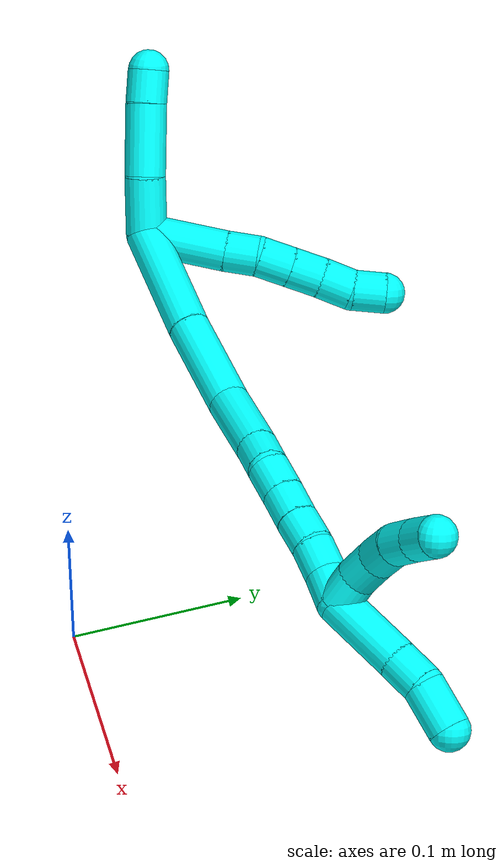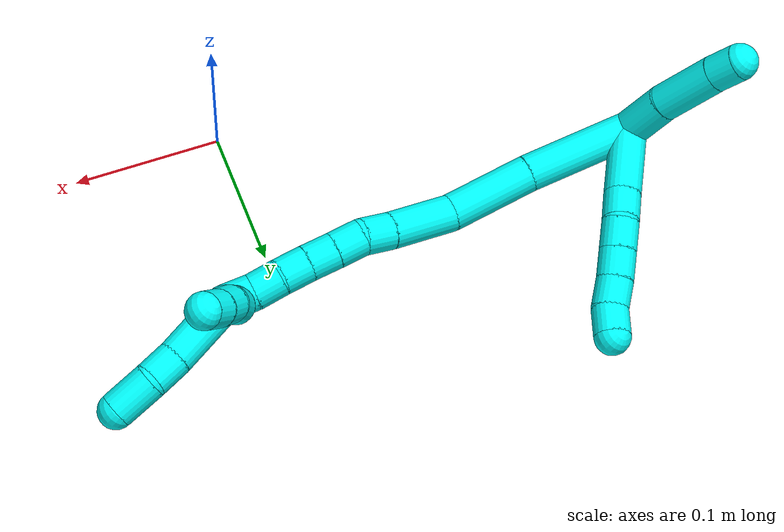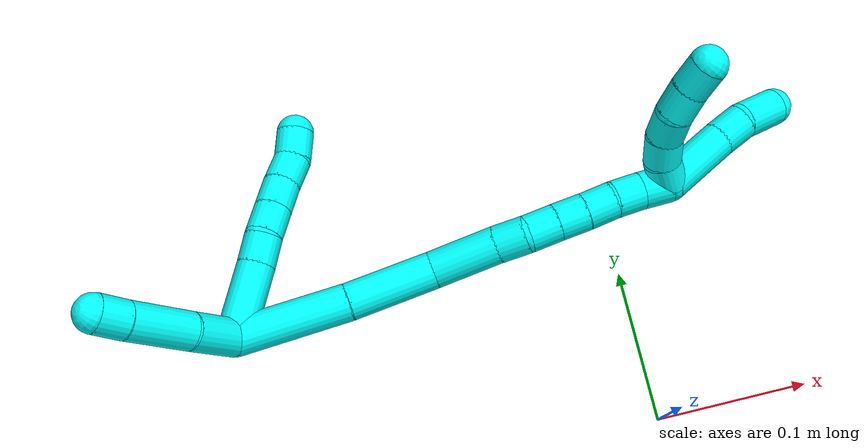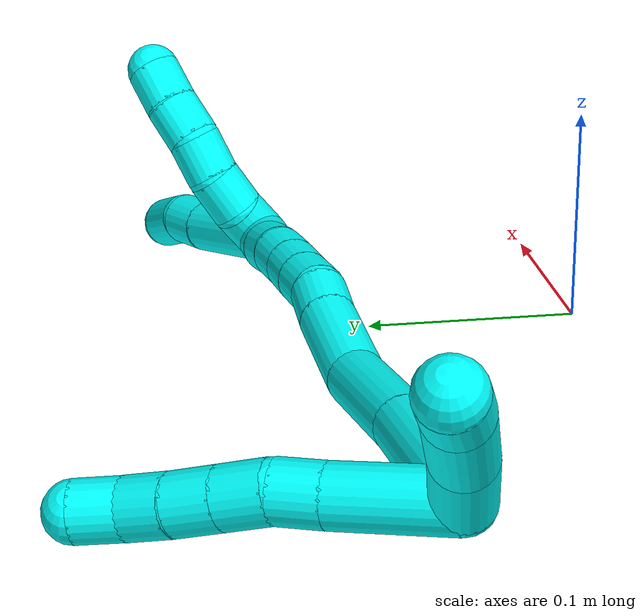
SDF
<sdf version="1.7">
 <world name="default">
  <model name="3">
   <static>0</static>
   <link name="3">
    <collision name="collision-cylinder-e_1_2_8">
     <pose>0.021741 0.010848 -0.003747 -1.90339 1.08507 -1.40443</pose>
     <geometry><cylinder><radius>0.0125</radius><length>0.049169</length></cylinder></geometry>
     <surface>
      <friction><ode><mu>1.16</mu><mu2>1.16</mu2><slip1>0</slip1><slip2>0</slip2></ode></friction>
      <contact><ode><kp>1e+06</kp><kd>1</kd><max_vel>0</max_vel><min_depth>0.001</min_depth></ode></contact>
     </surface>
    </collision>
    <visual name="visual-cylinder-e_1_2_8">
     <pose>0.021741 0.010848 -0.003747 -1.90339 1.08507 -1.40443</pose>
     <geometry><cylinder><radius>0.0125</radius><length>0.049169</length></cylinder></geometry>
     <material><ambient>0.003922 1 0.996078 1</ambient></material>
    </visual>
    <collision name="collision-cylinder-e_2_8_9">
     <pose>0.052488 0.02602 -0.008484 -1.79571 1.11324 -1.32571</pose>
     <geometry><cylinder><radius>0.0125</radius><length>0.020077</length></cylinder></geometry>
     <surface>
      <friction><ode><mu>1.16</mu><mu2>1.16</mu2><slip1>0</slip1><slip2>0</slip2></ode></friction>
      <contact><ode><kp>1e+06</kp><kd>1</kd><max_vel>0</max_vel><min_depth>0.001</min_depth></ode></contact>
     </surface>
    </collision>
    <visual name="visual-cylinder-e_2_8_9">
     <pose>0.052488 0.02602 -0.008484 -1.79571 1.11324 -1.32571</pose>
     <geometry><cylinder><radius>0.0125</radius><length>0.020077</length></cylinder></geometry>
     <material><ambient>0.003922 1 0.996078 1</ambient></material>
    </visual>
    <collision name="collision-cylinder-e_3_9_10">
     <pose>0.069725 0.035669 -0.012523 -2.09093 0.930083 -1.42693</pose>
     <geometry><cylinder><radius>0.0125</radius><length>0.020535</length></cylinder></geometry>
     <surface>
      <friction><ode><mu>1.16</mu><mu2>1.16</mu2><slip1>0</slip1><slip2>0</slip2></ode></friction>
      <contact><ode><kp>1e+06</kp><kd>1</kd><max_vel>0</max_vel><min_depth>0.001</min_depth></ode></contact>
     </surface>
    </collision>
    <visual name="visual-cylinder-e_3_9_10">
     <pose>0.069725 0.035669 -0.012523 -2.09093 0.930083 -1.42693</pose>
     <geometry><cylinder><radius>0.0125</radius><length>0.020535</length></cylinder></geometry>
     <material><ambient>0.003922 1 0.996078 1</ambient></material>
    </visual>
    <collision name="collision-cylinder-e_4_10_11">
     <pose>0.086028 0.046192 -0.018573 -2.09426 0.931416 -1.43239</pose>
     <geometry><cylinder><radius>0.0125</radius><length>0.020117</length></cylinder></geometry>
     <surface>
      <friction><ode><mu>1.16</mu><mu2>1.16</mu2><slip1>0</slip1><slip2>0</slip2></ode></friction>
      <contact><ode><kp>1e+06</kp><kd>1</kd><max_vel>0</max_vel><min_depth>0.001</min_depth></ode></contact>
     </surface>
    </collision>
    <visual name="visual-cylinder-e_4_10_11">
     <pose>0.086028 0.046192 -0.018573 -2.09426 0.931416 -1.43239</pose>
     <geometry><cylinder><radius>0.0125</radius><length>0.020117</length></cylinder></geometry>
     <material><ambient>0.003922 1 0.996078 1</ambient></material>
    </visual>
    <collision name="collision-cylinder-e_5_11_12">
     <pose>0.102396 0.05593 -0.024884 -2.20081 0.97558 -1.61332</pose>
     <geometry><cylinder><radius>0.0125</radius><length>0.02004</length></cylinder></geometry>
     <surface>
      <friction><ode><mu>1.16</mu><mu2>1.16</mu2><slip1>0</slip1><slip2>0</slip2></ode></friction>
      <contact><ode><kp>1e+06</kp><kd>1</kd><max_vel>0</max_vel><min_depth>0.001</min_depth></ode></contact>
     </surface>
    </collision>
    <visual name="visual-cylinder-e_5_11_12">
     <pose>0.102396 0.05593 -0.024884 -2.20081 0.97558 -1.61332</pose>
     <geometry><cylinder><radius>0.0125</radius><length>0.02004</length></cylinder></geometry>
     <material><ambient>0.003922 1 0.996078 1</ambient></material>
    </visual>
    <collision name="collision-cylinder-e_6_12_6">
     <pose>0.118879 0.066227 -0.028867 -1.68716 0.954621 -1.05293</pose>
     <geometry><cylinder><radius>0.0125</radius><length>0.020062</length></cylinder></geometry>
     <surface>
      <friction><ode><mu>1.16</mu><mu2>1.16</mu2><slip1>0</slip1><slip2>0</slip2></ode></friction>
      <contact><ode><kp>1e+06</kp><kd>1</kd><max_vel>0</max_vel><min_depth>0.001</min_depth></ode></contact>
     </surface>
    </collision>
    <visual name="visual-cylinder-e_6_12_6">
     <pose>0.118879 0.066227 -0.028867 -1.68716 0.954621 -1.05293</pose>
     <geometry><cylinder><radius>0.0125</radius><length>0.020062</length></cylinder></geometry>
     <material><ambient>0.003922 1 0.996078 1</ambient></material>
    </visual>
    <collision name="collision-cylinder-e_1_2_13">
     <pose>-0.00129 -1.3e-05 0.017809 0.000735 -0.072312 -2.7e-05</pose>
     <geometry><cylinder><radius>0.0125</radius><length>0.035712</length></cylinder></geometry>
     <surface>
      <friction><ode><mu>1.16</mu><mu2>1.16</mu2><slip1>0</slip1><slip2>0</slip2></ode></friction>
      <contact><ode><kp>1e+06</kp><kd>1</kd><max_vel>0</max_vel><min_depth>0.001</min_depth></ode></contact>
     </surface>
    </collision>
    <visual name="visual-cylinder-e_1_2_13">
     <pose>-0.00129 -1.3e-05 0.017809 0.000735 -0.072312 -2.7e-05</pose>
     <geometry><cylinder><radius>0.0125</radius><length>0.035712</length></cylinder></geometry>
     <material><ambient>0.003922 1 0.996078 1</ambient></material>
    </visual>
    <collision name="collision-cylinder-e_2_13_14">
     <pose>-0.004958 0.002916 0.057405 -0.134229 -0.107742 0.007249</pose>
     <geometry><cylinder><radius>0.0125</radius><length>0.044225</length></cylinder></geometry>
     <surface>
      <friction><ode><mu>1.16</mu><mu2>1.16</mu2><slip1>0</slip1><slip2>0</slip2></ode></friction>
      <contact><ode><kp>1e+06</kp><kd>1</kd><max_vel>0</max_vel><min_depth>0.001</min_depth></ode></contact>
     </surface>
    </collision>
    <visual name="visual-cylinder-e_2_13_14">
     <pose>-0.004958 0.002916 0.057405 -0.134229 -0.107742 0.007249</pose>
     <geometry><cylinder><radius>0.0125</radius><length>0.044225</length></cylinder></geometry>
     <material><ambient>0.003922 1 0.996078 1</ambient></material>
    </visual>
    <collision name="collision-cylinder-e_3_14_5">
     <pose>-0.008152 0.007798 0.089 -0.195322 -0.081477 0.007987</pose>
     <geometry><cylinder><radius>0.0125</radius><length>0.020063</length></cylinder></geometry>
     <surface>
      <friction><ode><mu>1.16</mu><mu2>1.16</mu2><slip1>0</slip1><slip2>0</slip2></ode></friction>
      <contact><ode><kp>1e+06</kp><kd>1</kd><max_vel>0</max_vel><min_depth>0.001</min_depth></ode></contact>
     </surface>
    </collision>
    <visual name="visual-cylinder-e_3_14_5">
     <pose>-0.008152 0.007798 0.089 -0.195322 -0.081477 0.007987</pose>
     <geometry><cylinder><radius>0.0125</radius><length>0.020063</length></cylinder></geometry>
     <material><ambient>0.003922 1 0.996078 1</ambient></material>
    </visual>
    <collision name="collision-cylinder-e_1_2_15">
     <pose>0.025876 -0.01528 -0.022347 2.54184 0.762826 1.82802</pose>
     <geometry><cylinder><radius>0.0125</radius><length>0.074899</length></cylinder></geometry>
     <surface>
      <friction><ode><mu>1.16</mu><mu2>1.16</mu2><slip1>0</slip1><slip2>0</slip2></ode></friction>
      <contact><ode><kp>1e+06</kp><kd>1</kd><max_vel>0</max_vel><min_depth>0.001</min_depth></ode></contact>
     </surface>
    </collision>
    <visual name="visual-cylinder-e_1_2_15">
     <pose>0.025876 -0.01528 -0.022347 2.54184 0.762826 1.82802</pose>
     <geometry><cylinder><radius>0.0125</radius><length>0.074899</length></cylinder></geometry>
     <material><ambient>0.003922 1 0.996078 1</ambient></material>
    </visual>
    <collision name="collision-cylinder-e_2_15_16">
     <pose>0.073029 -0.04094 -0.062079 2.60332 0.81018 1.99837</pose>
     <geometry><cylinder><radius>0.0125</radius><length>0.058742</length></cylinder></geometry>
     <surface>
      <friction><ode><mu>1.16</mu><mu2>1.16</mu2><slip1>0</slip1><slip2>0</slip2></ode></friction>
      <contact><ode><kp>1e+06</kp><kd>1</kd><max_vel>0</max_vel><min_depth>0.001</min_depth></ode></contact>
     </surface>
    </collision>
    <visual name="visual-cylinder-e_2_15_16">
     <pose>0.073029 -0.04094 -0.062079 2.60332 0.81018 1.99837</pose>
     <geometry><cylinder><radius>0.0125</radius><length>0.058742</length></cylinder></geometry>
     <material><ambient>0.003922 1 0.996078 1</ambient></material>
    </visual>
    <collision name="collision-cylinder-e_3_16_17">
     <pose>0.111654 -0.06309 -0.087881 2.1917 0.875581 1.47697</pose>
     <geometry><cylinder><radius>0.0125</radius><length>0.04518</length></cylinder></geometry>
     <surface>
      <friction><ode><mu>1.16</mu><mu2>1.16</mu2><slip1>0</slip1><slip2>0</slip2></ode></friction>
      <contact><ode><kp>1e+06</kp><kd>1</kd><max_vel>0</max_vel><min_depth>0.001</min_depth></ode></contact>
     </surface>
    </collision>
    <visual name="visual-cylinder-e_3_16_17">
     <pose>0.111654 -0.06309 -0.087881 2.1917 0.875581 1.47697</pose>
     <geometry><cylinder><radius>0.0125</radius><length>0.04518</length></cylinder></geometry>
     <material><ambient>0.003922 1 0.996078 1</ambient></material>
    </visual>
    <collision name="collision-cylinder-e_4_17_18">
     <pose>0.136579 -0.080788 -0.099888 2.11501 0.830029 1.3269</pose>
     <geometry><cylinder><radius>0.0125</radius><length>0.020538</length></cylinder></geometry>
     <surface>
      <friction><ode><mu>1.16</mu><mu2>1.16</mu2><slip1>0</slip1><slip2>0</slip2></ode></friction>
      <contact><ode><kp>1e+06</kp><kd>1</kd><max_vel>0</max_vel><min_depth>0.001</min_depth></ode></contact>
     </surface>
    </collision>
    <visual name="visual-cylinder-e_4_17_18">
     <pose>0.136579 -0.080788 -0.099888 2.11501 0.830029 1.3269</pose>
     <geometry><cylinder><radius>0.0125</radius><length>0.020538</length></cylinder></geometry>
     <material><ambient>0.003922 1 0.996078 1</ambient></material>
    </visual>
    <collision name="collision-cylinder-e_5_18_19">
     <pose>0.151819 -0.090489 -0.109233 2.5616 0.838919 1.9621</pose>
     <geometry><cylinder><radius>0.0125</radius><length>0.0206</length></cylinder></geometry>
     <surface>
      <friction><ode><mu>1.16</mu><mu2>1.16</mu2><slip1>0</slip1><slip2>0</slip2></ode></friction>
      <contact><ode><kp>1e+06</kp><kd>1</kd><max_vel>0</max_vel><min_depth>0.001</min_depth></ode></contact>
     </surface>
    </collision>
    <visual name="visual-cylinder-e_5_18_19">
     <pose>0.151819 -0.090489 -0.109233 2.5616 0.838919 1.9621</pose>
     <geometry><cylinder><radius>0.0125</radius><length>0.0206</length></cylinder></geometry>
     <material><ambient>0.003922 1 0.996078 1</ambient></material>
    </visual>
    <collision name="collision-cylinder-e_6_19_20">
     <pose>0.1668 -0.098125 -0.12062 2.54001 0.820042 1.9019</pose>
     <geometry><cylinder><radius>0.0125</radius><length>0.020017</length></cylinder></geometry>
     <surface>
      <friction><ode><mu>1.16</mu><mu2>1.16</mu2><slip1>0</slip1><slip2>0</slip2></ode></friction>
      <contact><ode><kp>1e+06</kp><kd>1</kd><max_vel>0</max_vel><min_depth>0.001</min_depth></ode></contact>
     </surface>
    </collision>
    <visual name="visual-cylinder-e_6_19_20">
     <pose>0.1668 -0.098125 -0.12062 2.54001 0.820042 1.9019</pose>
     <geometry><cylinder><radius>0.0125</radius><length>0.020017</length></cylinder></geometry>
     <material><ambient>0.003922 1 0.996078 1</ambient></material>
    </visual>
    <collision name="collision-cylinder-e_7_20_21">
     <pose>0.181697 -0.105568 -0.131723 2.56259 0.858927 1.98826</pose>
     <geometry><cylinder><radius>0.0125</radius><length>0.02002</length></cylinder></geometry>
     <surface>
      <friction><ode><mu>1.16</mu><mu2>1.16</mu2><slip1>0</slip1><slip2>0</slip2></ode></friction>
      <contact><ode><kp>1e+06</kp><kd>1</kd><max_vel>0</max_vel><min_depth>0.001</min_depth></ode></contact>
     </surface>
    </collision>
    <visual name="visual-cylinder-e_7_20_21">
     <pose>0.181697 -0.105568 -0.131723 2.56259 0.858927 1.98826</pose>
     <geometry><cylinder><radius>0.0125</radius><length>0.02002</length></cylinder></geometry>
     <material><ambient>0.003922 1 0.996078 1</ambient></material>
    </visual>
    <collision name="collision-cylinder-e_8_21_22">
     <pose>0.196015 -0.112218 -0.143916 2.71285 0.739361 2.11779</pose>
     <geometry><cylinder><radius>0.0125</radius><length>0.02</length></cylinder></geometry>
     <surface>
      <friction><ode><mu>1.16</mu><mu2>1.16</mu2><slip1>0</slip1><slip2>0</slip2></ode></friction>
      <contact><ode><kp>1e+06</kp><kd>1</kd><max_vel>0</max_vel><min_depth>0.001</min_depth></ode></contact>
     </surface>
    </collision>
    <visual name="visual-cylinder-e_8_21_22">
     <pose>0.196015 -0.112218 -0.143916 2.71285 0.739361 2.11779</pose>
     <geometry><cylinder><radius>0.0125</radius><length>0.02</length></cylinder></geometry>
     <material><ambient>0.003922 1 0.996078 1</ambient></material>
    </visual>
    <collision name="collision-cylinder-e_9_22_1">
     <pose>0.209398 -0.11965 -0.156706 2.51859 0.726755 1.7364</pose>
     <geometry><cylinder><radius>0.0125</radius><length>0.020002</length></cylinder></geometry>
     <surface>
      <friction><ode><mu>1.16</mu><mu2>1.16</mu2><slip1>0</slip1><slip2>0</slip2></ode></friction>
      <contact><ode><kp>1e+06</kp><kd>1</kd><max_vel>0</max_vel><min_depth>0.001</min_depth></ode></contact>
     </surface>
    </collision>
    <visual name="visual-cylinder-e_9_22_1">
     <pose>0.209398 -0.11965 -0.156706 2.51859 0.726755 1.7364</pose>
     <geometry><cylinder><radius>0.0125</radius><length>0.020002</length></cylinder></geometry>
     <material><ambient>0.003922 1 0.996078 1</ambient></material>
    </visual>
    <collision name="collision-cylinder-e_1_1_23">
     <pose>0.221411 -0.123037 -0.154396 -0.115722 0.566641 -0.033727</pose>
     <geometry><cylinder><radius>0.0125</radius><length>0.02</length></cylinder></geometry>
     <surface>
      <friction><ode><mu>1.16</mu><mu2>1.16</mu2><slip1>0</slip1><slip2>0</slip2></ode></friction>
      <contact><ode><kp>1e+06</kp><kd>1</kd><max_vel>0</max_vel><min_depth>0.001</min_depth></ode></contact>
     </surface>
    </collision>
    <visual name="visual-cylinder-e_1_1_23">
     <pose>0.221411 -0.123037 -0.154396 -0.115722 0.566641 -0.033727</pose>
     <geometry><cylinder><radius>0.0125</radius><length>0.02</length></cylinder></geometry>
     <material><ambient>0.003922 1 0.996078 1</ambient></material>
    </visual>
    <collision name="collision-cylinder-e_2_23_24">
     <pose>0.233715 -0.12314 -0.138892 0.150026 0.766382 0.060573</pose>
     <geometry><cylinder><radius>0.0125</radius><length>0.02</length></cylinder></geometry>
     <surface>
      <friction><ode><mu>1.16</mu><mu2>1.16</mu2><slip1>0</slip1><slip2>0</slip2></ode></friction>
      <contact><ode><kp>1e+06</kp><kd>1</kd><max_vel>0</max_vel><min_depth>0.001</min_depth></ode></contact>
     </surface>
    </collision>
    <visual name="visual-cylinder-e_2_23_24">
     <pose>0.233715 -0.12314 -0.138892 0.150026 0.766382 0.060573</pose>
     <geometry><cylinder><radius>0.0125</radius><length>0.02</length></cylinder></geometry>
     <material><ambient>0.003922 1 0.996078 1</ambient></material>
    </visual>
    <collision name="collision-cylinder-e_3_24_25">
     <pose>0.247887 -0.12742 -0.125656 0.482643 0.809112 0.209987</pose>
     <geometry><cylinder><radius>0.0125</radius><length>0.02</length></cylinder></geometry>
     <surface>
      <friction><ode><mu>1.16</mu><mu2>1.16</mu2><slip1>0</slip1><slip2>0</slip2></ode></friction>
      <contact><ode><kp>1e+06</kp><kd>1</kd><max_vel>0</max_vel><min_depth>0.001</min_depth></ode></contact>
     </surface>
    </collision>
    <visual name="visual-cylinder-e_3_24_25">
     <pose>0.247887 -0.12742 -0.125656 0.482643 0.809112 0.209987</pose>
     <geometry><cylinder><radius>0.0125</radius><length>0.02</length></cylinder></geometry>
     <material><ambient>0.003922 1 0.996078 1</ambient></material>
    </visual>
    <collision name="collision-cylinder-e_4_25_26">
     <pose>0.263787 -0.133869 -0.115747 0.707579 1.04785 0.420479</pose>
     <geometry><cylinder><radius>0.0125</radius><length>0.02</length></cylinder></geometry>
     <surface>
      <friction><ode><mu>1.16</mu><mu2>1.16</mu2><slip1>0</slip1><slip2>0</slip2></ode></friction>
      <contact><ode><kp>1e+06</kp><kd>1</kd><max_vel>0</max_vel><min_depth>0.001</min_depth></ode></contact>
     </surface>
    </collision>
    <visual name="visual-cylinder-e_4_25_26">
     <pose>0.263787 -0.133869 -0.115747 0.707579 1.04785 0.420479</pose>
     <geometry><cylinder><radius>0.0125</radius><length>0.02</length></cylinder></geometry>
     <material><ambient>0.003922 1 0.996078 1</ambient></material>
    </visual>
    <collision name="collision-cylinder-e_5_26_4">
     <pose>0.280881 -0.141252 -0.108514 0.877393 1.00296 0.503526</pose>
     <geometry><cylinder><radius>0.0125</radius><length>0.02</length></cylinder></geometry>
     <surface>
      <friction><ode><mu>1.16</mu><mu2>1.16</mu2><slip1>0</slip1><slip2>0</slip2></ode></friction>
      <contact><ode><kp>1e+06</kp><kd>1</kd><max_vel>0</max_vel><min_depth>0.001</min_depth></ode></contact>
     </surface>
    </collision>
    <visual name="visual-cylinder-e_5_26_4">
     <pose>0.280881 -0.141252 -0.108514 0.877393 1.00296 0.503526</pose>
     <geometry><cylinder><radius>0.0125</radius><length>0.02</length></cylinder></geometry>
     <material><ambient>0.003922 1 0.996078 1</ambient></material>
    </visual>
    <collision name="collision-cylinder-e_1_1_27">
     <pose>0.236711 -0.12452 -0.175548 3.10175 1.01696 3.07013</pose>
     <geometry><cylinder><radius>0.0125</radius><length>0.048601</length></cylinder></geometry>
     <surface>
      <friction><ode><mu>1.16</mu><mu2>1.16</mu2><slip1>0</slip1><slip2>0</slip2></ode></friction>
      <contact><ode><kp>1e+06</kp><kd>1</kd><max_vel>0</max_vel><min_depth>0.001</min_depth></ode></contact>
     </surface>
    </collision>
    <visual name="visual-cylinder-e_1_1_27">
     <pose>0.236711 -0.12452 -0.175548 3.10175 1.01696 3.07013</pose>
     <geometry><cylinder><radius>0.0125</radius><length>0.048601</length></cylinder></geometry>
     <material><ambient>0.003922 1 0.996078 1</ambient></material>
    </visual>
    <collision name="collision-cylinder-e_2_27_28">
     <pose>0.266799 -0.126251 -0.193721 2.91922 1.0392 2.75608</pose>
     <geometry><cylinder><radius>0.0125</radius><length>0.021855</length></cylinder></geometry>
     <surface>
      <friction><ode><mu>1.16</mu><mu2>1.16</mu2><slip1>0</slip1><slip2>0</slip2></ode></friction>
      <contact><ode><kp>1e+06</kp><kd>1</kd><max_vel>0</max_vel><min_depth>0.001</min_depth></ode></contact>
     </surface>
    </collision>
    <visual name="visual-cylinder-e_2_27_28">
     <pose>0.266799 -0.126251 -0.193721 2.91922 1.0392 2.75608</pose>
     <geometry><cylinder><radius>0.0125</radius><length>0.021855</length></cylinder></geometry>
     <material><ambient>0.003922 1 0.996078 1</ambient></material>
    </visual>
    <collision name="collision-cylinder-e_3_28_3">
     <pose>0.286033 -0.128757 -0.210089 3.02498 0.72677 2.83697</pose>
     <geometry><cylinder><radius>0.0125</radius><length>0.029544</length></cylinder></geometry>
     <surface>
      <friction><ode><mu>1.16</mu><mu2>1.16</mu2><slip1>0</slip1><slip2>0</slip2></ode></friction>
      <contact><ode><kp>1e+06</kp><kd>1</kd><max_vel>0</max_vel><min_depth>0.001</min_depth></ode></contact>
     </surface>
    </collision>
    <visual name="visual-cylinder-e_3_28_3">
     <pose>0.286033 -0.128757 -0.210089 3.02498 0.72677 2.83697</pose>
     <geometry><cylinder><radius>0.0125</radius><length>0.029544</length></cylinder></geometry>
     <material><ambient>0.003922 1 0.996078 1</ambient></material>
    </visual>
    <collision name="collision-sphere-3">
     <pose>0.295849 -0.130042 -0.221053 0 -0 0</pose>
     <geometry><sphere><radius>0.0125</radius></sphere></geometry>
     <surface>
      <friction><ode><mu>1.16</mu><mu2>1.16</mu2><slip1>0</slip1><slip2>0</slip2></ode></friction>
      <contact><ode><kp>1e+06</kp><kd>1</kd><max_vel>0</max_vel><min_depth>0.001</min_depth></ode></contact>
     </surface>
    </collision>
    <visual name="visual-sphere-3">
     <pose>0.295849 -0.130042 -0.221053 0 -0 0</pose>
     <geometry><sphere><radius>0.0125</radius></sphere></geometry>
     <material><ambient>0.003922 1 0.996078 1</ambient></material>
    </visual>
    <collision name="collision-sphere-28">
     <pose>0.276218 -0.127473 -0.199124 0 -0 0</pose>
     <geometry><sphere><radius>0.0125</radius></sphere></geometry>
     <surface>
      <friction><ode><mu>1.16</mu><mu2>1.16</mu2><slip1>0</slip1><slip2>0</slip2></ode></friction>
      <contact><ode><kp>1e+06</kp><kd>1</kd><max_vel>0</max_vel><min_depth>0.001</min_depth></ode></contact>
     </surface>
    </collision>
    <visual name="visual-sphere-28">
     <pose>0.276218 -0.127473 -0.199124 0 -0 0</pose>
     <geometry><sphere><radius>0.0125</radius></sphere></geometry>
     <material><ambient>0.003922 1 0.996078 1</ambient></material>
    </visual>
    <collision name="collision-sphere-27">
     <pose>0.257379 -0.12503 -0.188318 0 -0 0</pose>
     <geometry><sphere><radius>0.0125</radius></sphere></geometry>
     <surface>
      <friction><ode><mu>1.16</mu><mu2>1.16</mu2><slip1>0</slip1><slip2>0</slip2></ode></friction>
      <contact><ode><kp>1e+06</kp><kd>1</kd><max_vel>0</max_vel><min_depth>0.001</min_depth></ode></contact>
     </surface>
    </collision>
    <visual name="visual-sphere-27">
     <pose>0.257379 -0.12503 -0.188318 0 -0 0</pose>
     <geometry><sphere><radius>0.0125</radius></sphere></geometry>
     <material><ambient>0.003922 1 0.996078 1</ambient></material>
    </visual>
    <collision name="collision-sphere-4">
     <pose>0.289312 -0.145388 -0.105077 0 -0 0</pose>
     <geometry><sphere><radius>0.0125</radius></sphere></geometry>
     <surface>
      <friction><ode><mu>1.16</mu><mu2>1.16</mu2><slip1>0</slip1><slip2>0</slip2></ode></friction>
      <contact><ode><kp>1e+06</kp><kd>1</kd><max_vel>0</max_vel><min_depth>0.001</min_depth></ode></contact>
     </surface>
    </collision>
    <visual name="visual-sphere-4">
     <pose>0.289312 -0.145388 -0.105077 0 -0 0</pose>
     <geometry><sphere><radius>0.0125</radius></sphere></geometry>
     <material><ambient>0.003922 1 0.996078 1</ambient></material>
    </visual>
    <collision name="collision-sphere-26">
     <pose>0.272451 -0.137115 -0.111952 0 -0 0</pose>
     <geometry><sphere><radius>0.0125</radius></sphere></geometry>
     <surface>
      <friction><ode><mu>1.16</mu><mu2>1.16</mu2><slip1>0</slip1><slip2>0</slip2></ode></friction>
      <contact><ode><kp>1e+06</kp><kd>1</kd><max_vel>0</max_vel><min_depth>0.001</min_depth></ode></contact>
     </surface>
    </collision>
    <visual name="visual-sphere-26">
     <pose>0.272451 -0.137115 -0.111952 0 -0 0</pose>
     <geometry><sphere><radius>0.0125</radius></sphere></geometry>
     <material><ambient>0.003922 1 0.996078 1</ambient></material>
    </visual>
    <collision name="collision-sphere-25">
     <pose>0.255123 -0.130623 -0.119542 0 -0 0</pose>
     <geometry><sphere><radius>0.0125</radius></sphere></geometry>
     <surface>
      <friction><ode><mu>1.16</mu><mu2>1.16</mu2><slip1>0</slip1><slip2>0</slip2></ode></friction>
      <contact><ode><kp>1e+06</kp><kd>1</kd><max_vel>0</max_vel><min_depth>0.001</min_depth></ode></contact>
     </surface>
    </collision>
    <visual name="visual-sphere-25">
     <pose>0.255123 -0.130623 -0.119542 0 -0 0</pose>
     <geometry><sphere><radius>0.0125</radius></sphere></geometry>
     <material><ambient>0.003922 1 0.996078 1</ambient></material>
    </visual>
    <collision name="collision-sphere-24">
     <pose>0.24065 -0.124217 -0.131769 0 -0 0</pose>
     <geometry><sphere><radius>0.0125</radius></sphere></geometry>
     <surface>
      <friction><ode><mu>1.16</mu><mu2>1.16</mu2><slip1>0</slip1><slip2>0</slip2></ode></friction>
      <contact><ode><kp>1e+06</kp><kd>1</kd><max_vel>0</max_vel><min_depth>0.001</min_depth></ode></contact>
     </surface>
    </collision>
    <visual name="visual-sphere-24">
     <pose>0.24065 -0.124217 -0.131769 0 -0 0</pose>
     <geometry><sphere><radius>0.0125</radius></sphere></geometry>
     <material><ambient>0.003922 1 0.996078 1</ambient></material>
    </visual>
    <collision name="collision-sphere-23">
     <pose>0.226779 -0.122063 -0.146015 0 -0 0</pose>
     <geometry><sphere><radius>0.0125</radius></sphere></geometry>
     <surface>
      <friction><ode><mu>1.16</mu><mu2>1.16</mu2><slip1>0</slip1><slip2>0</slip2></ode></friction>
      <contact><ode><kp>1e+06</kp><kd>1</kd><max_vel>0</max_vel><min_depth>0.001</min_depth></ode></contact>
     </surface>
    </collision>
    <visual name="visual-sphere-23">
     <pose>0.226779 -0.122063 -0.146015 0 -0 0</pose>
     <geometry><sphere><radius>0.0125</radius></sphere></geometry>
     <material><ambient>0.003922 1 0.996078 1</ambient></material>
    </visual>
    <collision name="collision-sphere-1">
     <pose>0.216043 -0.124011 -0.162777 0 -0 0</pose>
     <geometry><sphere><radius>0.0125</radius></sphere></geometry>
     <surface>
      <friction><ode><mu>1.16</mu><mu2>1.16</mu2><slip1>0</slip1><slip2>0</slip2></ode></friction>
      <contact><ode><kp>1e+06</kp><kd>1</kd><max_vel>0</max_vel><min_depth>0.001</min_depth></ode></contact>
     </surface>
    </collision>
    <visual name="visual-sphere-1">
     <pose>0.216043 -0.124011 -0.162777 0 -0 0</pose>
     <geometry><sphere><radius>0.0125</radius></sphere></geometry>
     <material><ambient>0.003922 1 0.996078 1</ambient></material>
    </visual>
    <collision name="collision-sphere-22">
     <pose>0.202753 -0.115289 -0.150636 0 -0 0</pose>
     <geometry><sphere><radius>0.0125</radius></sphere></geometry>
     <surface>
      <friction><ode><mu>1.16</mu><mu2>1.16</mu2><slip1>0</slip1><slip2>0</slip2></ode></friction>
      <contact><ode><kp>1e+06</kp><kd>1</kd><max_vel>0</max_vel><min_depth>0.001</min_depth></ode></contact>
     </surface>
    </collision>
    <visual name="visual-sphere-22">
     <pose>0.202753 -0.115289 -0.150636 0 -0 0</pose>
     <geometry><sphere><radius>0.0125</radius></sphere></geometry>
     <material><ambient>0.003922 1 0.996078 1</ambient></material>
    </visual>
    <collision name="collision-sphere-21">
     <pose>0.189276 -0.109146 -0.137196 0 -0 0</pose>
     <geometry><sphere><radius>0.0125</radius></sphere></geometry>
     <surface>
      <friction><ode><mu>1.16</mu><mu2>1.16</mu2><slip1>0</slip1><slip2>0</slip2></ode></friction>
      <contact><ode><kp>1e+06</kp><kd>1</kd><max_vel>0</max_vel><min_depth>0.001</min_depth></ode></contact>
     </surface>
    </collision>
    <visual name="visual-sphere-21">
     <pose>0.189276 -0.109146 -0.137196 0 -0 0</pose>
     <geometry><sphere><radius>0.0125</radius></sphere></geometry>
     <material><ambient>0.003922 1 0.996078 1</ambient></material>
    </visual>
    <collision name="collision-sphere-12">
     <pose>0.110693 0.06047 -0.028193 0 -0 0</pose>
     <geometry><sphere><radius>0.0125</radius></sphere></geometry>
     <surface>
      <friction><ode><mu>1.16</mu><mu2>1.16</mu2><slip1>0</slip1><slip2>0</slip2></ode></friction>
      <contact><ode><kp>1e+06</kp><kd>1</kd><max_vel>0</max_vel><min_depth>0.001</min_depth></ode></contact>
     </surface>
    </collision>
    <visual name="visual-sphere-12">
     <pose>0.110693 0.06047 -0.028193 0 -0 0</pose>
     <geometry><sphere><radius>0.0125</radius></sphere></geometry>
     <material><ambient>0.003922 1 0.996078 1</ambient></material>
    </visual>
    <collision name="collision-sphere-11">
     <pose>0.094099 0.051391 -0.021574 0 -0 0</pose>
     <geometry><sphere><radius>0.0125</radius></sphere></geometry>
     <surface>
      <friction><ode><mu>1.16</mu><mu2>1.16</mu2><slip1>0</slip1><slip2>0</slip2></ode></friction>
      <contact><ode><kp>1e+06</kp><kd>1</kd><max_vel>0</max_vel><min_depth>0.001</min_depth></ode></contact>
     </surface>
    </collision>
    <visual name="visual-sphere-11">
     <pose>0.094099 0.051391 -0.021574 0 -0 0</pose>
     <geometry><sphere><radius>0.0125</radius></sphere></geometry>
     <material><ambient>0.003922 1 0.996078 1</ambient></material>
    </visual>
    <collision name="collision-sphere-10">
     <pose>0.077956 0.040994 -0.015573 0 -0 0</pose>
     <geometry><sphere><radius>0.0125</radius></sphere></geometry>
     <surface>
      <friction><ode><mu>1.16</mu><mu2>1.16</mu2><slip1>0</slip1><slip2>0</slip2></ode></friction>
      <contact><ode><kp>1e+06</kp><kd>1</kd><max_vel>0</max_vel><min_depth>0.001</min_depth></ode></contact>
     </surface>
    </collision>
    <visual name="visual-sphere-10">
     <pose>0.077956 0.040994 -0.015573 0 -0 0</pose>
     <geometry><sphere><radius>0.0125</radius></sphere></geometry>
     <material><ambient>0.003922 1 0.996078 1</ambient></material>
    </visual>
    <collision name="collision-sphere-9">
     <pose>0.061494 0.030343 -0.009473 0 -0 0</pose>
     <geometry><sphere><radius>0.0125</radius></sphere></geometry>
     <surface>
      <friction><ode><mu>1.16</mu><mu2>1.16</mu2><slip1>0</slip1><slip2>0</slip2></ode></friction>
      <contact><ode><kp>1e+06</kp><kd>1</kd><max_vel>0</max_vel><min_depth>0.001</min_depth></ode></contact>
     </surface>
    </collision>
    <visual name="visual-sphere-9">
     <pose>0.061494 0.030343 -0.009473 0 -0 0</pose>
     <geometry><sphere><radius>0.0125</radius></sphere></geometry>
     <material><ambient>0.003922 1 0.996078 1</ambient></material>
    </visual>
    <collision name="collision-sphere-2">
     <geometry><sphere><radius>0.0125</radius></sphere></geometry>
     <surface>
      <friction><ode><mu>1.16</mu><mu2>1.16</mu2><slip1>0</slip1><slip2>0</slip2></ode></friction>
      <contact><ode><kp>1e+06</kp><kd>1</kd><max_vel>0</max_vel><min_depth>0.001</min_depth></ode></contact>
     </surface>
    </collision>
    <visual name="visual-sphere-2">
     <geometry><sphere><radius>0.0125</radius></sphere></geometry>
     <material><ambient>0.003922 1 0.996078 1</ambient></material>
    </visual>
    <collision name="collision-sphere-19">
     <pose>0.159482 -0.094261 -0.114991 0 -0 0</pose>
     <geometry><sphere><radius>0.0125</radius></sphere></geometry>
     <surface>
      <friction><ode><mu>1.16</mu><mu2>1.16</mu2><slip1>0</slip1><slip2>0</slip2></ode></friction>
      <contact><ode><kp>1e+06</kp><kd>1</kd><max_vel>0</max_vel><min_depth>0.001</min_depth></ode></contact>
     </surface>
    </collision>
    <visual name="visual-sphere-19">
     <pose>0.159482 -0.094261 -0.114991 0 -0 0</pose>
     <geometry><sphere><radius>0.0125</radius></sphere></geometry>
     <material><ambient>0.003922 1 0.996078 1</ambient></material>
    </visual>
    <collision name="collision-sphere-8">
     <pose>0.043482 0.021697 -0.007495 0 -0 0</pose>
     <geometry><sphere><radius>0.0125</radius></sphere></geometry>
     <surface>
      <friction><ode><mu>1.16</mu><mu2>1.16</mu2><slip1>0</slip1><slip2>0</slip2></ode></friction>
      <contact><ode><kp>1e+06</kp><kd>1</kd><max_vel>0</max_vel><min_depth>0.001</min_depth></ode></contact>
     </surface>
    </collision>
    <visual name="visual-sphere-8">
     <pose>0.043482 0.021697 -0.007495 0 -0 0</pose>
     <geometry><sphere><radius>0.0125</radius></sphere></geometry>
     <material><ambient>0.003922 1 0.996078 1</ambient></material>
    </visual>
    <collision name="collision-sphere-6">
     <pose>0.127065 0.071985 -0.02954 0 -0 0</pose>
     <geometry><sphere><radius>0.0125</radius></sphere></geometry>
     <surface>
      <friction><ode><mu>1.16</mu><mu2>1.16</mu2><slip1>0</slip1><slip2>0</slip2></ode></friction>
      <contact><ode><kp>1e+06</kp><kd>1</kd><max_vel>0</max_vel><min_depth>0.001</min_depth></ode></contact>
     </surface>
    </collision>
    <visual name="visual-sphere-6">
     <pose>0.127065 0.071985 -0.02954 0 -0 0</pose>
     <geometry><sphere><radius>0.0125</radius></sphere></geometry>
     <material><ambient>0.003922 1 0.996078 1</ambient></material>
    </visual>
    <collision name="collision-sphere-13">
     <pose>-0.00258 -2.6e-05 0.035619 0 -0 0</pose>
     <geometry><sphere><radius>0.0125</radius></sphere></geometry>
     <surface>
      <friction><ode><mu>1.16</mu><mu2>1.16</mu2><slip1>0</slip1><slip2>0</slip2></ode></friction>
      <contact><ode><kp>1e+06</kp><kd>1</kd><max_vel>0</max_vel><min_depth>0.001</min_depth></ode></contact>
     </surface>
    </collision>
    <visual name="visual-sphere-13">
     <pose>-0.00258 -2.6e-05 0.035619 0 -0 0</pose>
     <geometry><sphere><radius>0.0125</radius></sphere></geometry>
     <material><ambient>0.003922 1 0.996078 1</ambient></material>
    </visual>
    <collision name="collision-sphere-14">
     <pose>-0.007336 0.005858 0.079192 0 -0 0</pose>
     <geometry><sphere><radius>0.0125</radius></sphere></geometry>
     <surface>
      <friction><ode><mu>1.16</mu><mu2>1.16</mu2><slip1>0</slip1><slip2>0</slip2></ode></friction>
      <contact><ode><kp>1e+06</kp><kd>1</kd><max_vel>0</max_vel><min_depth>0.001</min_depth></ode></contact>
     </surface>
    </collision>
    <visual name="visual-sphere-14">
     <pose>-0.007336 0.005858 0.079192 0 -0 0</pose>
     <geometry><sphere><radius>0.0125</radius></sphere></geometry>
     <material><ambient>0.003922 1 0.996078 1</ambient></material>
    </visual>
    <collision name="collision-sphere-5">
     <pose>-0.008969 0.009739 0.098808 0 -0 0</pose>
     <geometry><sphere><radius>0.0125</radius></sphere></geometry>
     <surface>
      <friction><ode><mu>1.16</mu><mu2>1.16</mu2><slip1>0</slip1><slip2>0</slip2></ode></friction>
      <contact><ode><kp>1e+06</kp><kd>1</kd><max_vel>0</max_vel><min_depth>0.001</min_depth></ode></contact>
     </surface>
    </collision>
    <visual name="visual-sphere-5">
     <pose>-0.008969 0.009739 0.098808 0 -0 0</pose>
     <geometry><sphere><radius>0.0125</radius></sphere></geometry>
     <material><ambient>0.003922 1 0.996078 1</ambient></material>
    </visual>
    <collision name="collision-sphere-15">
     <pose>0.051753 -0.03056 -0.044694 0 -0 0</pose>
     <geometry><sphere><radius>0.0125</radius></sphere></geometry>
     <surface>
      <friction><ode><mu>1.16</mu><mu2>1.16</mu2><slip1>0</slip1><slip2>0</slip2></ode></friction>
      <contact><ode><kp>1e+06</kp><kd>1</kd><max_vel>0</max_vel><min_depth>0.001</min_depth></ode></contact>
     </surface>
    </collision>
    <visual name="visual-sphere-15">
     <pose>0.051753 -0.03056 -0.044694 0 -0 0</pose>
     <geometry><sphere><radius>0.0125</radius></sphere></geometry>
     <material><ambient>0.003922 1 0.996078 1</ambient></material>
    </visual>
    <collision name="collision-sphere-16">
     <pose>0.094306 -0.05132 -0.079463 0 -0 0</pose>
     <geometry><sphere><radius>0.0125</radius></sphere></geometry>
     <surface>
      <friction><ode><mu>1.16</mu><mu2>1.16</mu2><slip1>0</slip1><slip2>0</slip2></ode></friction>
      <contact><ode><kp>1e+06</kp><kd>1</kd><max_vel>0</max_vel><min_depth>0.001</min_depth></ode></contact>
     </surface>
    </collision>
    <visual name="visual-sphere-16">
     <pose>0.094306 -0.05132 -0.079463 0 -0 0</pose>
     <geometry><sphere><radius>0.0125</radius></sphere></geometry>
     <material><ambient>0.003922 1 0.996078 1</ambient></material>
    </visual>
    <collision name="collision-sphere-17">
     <pose>0.129001 -0.074859 -0.0963 0 -0 0</pose>
     <geometry><sphere><radius>0.0125</radius></sphere></geometry>
     <surface>
      <friction><ode><mu>1.16</mu><mu2>1.16</mu2><slip1>0</slip1><slip2>0</slip2></ode></friction>
      <contact><ode><kp>1e+06</kp><kd>1</kd><max_vel>0</max_vel><min_depth>0.001</min_depth></ode></contact>
     </surface>
    </collision>
    <visual name="visual-sphere-17">
     <pose>0.129001 -0.074859 -0.0963 0 -0 0</pose>
     <geometry><sphere><radius>0.0125</radius></sphere></geometry>
     <material><ambient>0.003922 1 0.996078 1</ambient></material>
    </visual>
    <collision name="collision-sphere-18">
     <pose>0.144157 -0.086717 -0.103476 0 -0 0</pose>
     <geometry><sphere><radius>0.0125</radius></sphere></geometry>
     <surface>
      <friction><ode><mu>1.16</mu><mu2>1.16</mu2><slip1>0</slip1><slip2>0</slip2></ode></friction>
      <contact><ode><kp>1e+06</kp><kd>1</kd><max_vel>0</max_vel><min_depth>0.001</min_depth></ode></contact>
     </surface>
    </collision>
    <visual name="visual-sphere-18">
     <pose>0.144157 -0.086717 -0.103476 0 -0 0</pose>
     <geometry><sphere><radius>0.0125</radius></sphere></geometry>
     <material><ambient>0.003922 1 0.996078 1</ambient></material>
    </visual>
    <collision name="collision-sphere-20">
     <pose>0.174118 -0.101989 -0.126249 0 -0 0</pose>
     <geometry><sphere><radius>0.0125</radius></sphere></geometry>
     <surface>
      <friction><ode><mu>1.16</mu><mu2>1.16</mu2><slip1>0</slip1><slip2>0</slip2></ode></friction>
      <contact><ode><kp>1e+06</kp><kd>1</kd><max_vel>0</max_vel><min_depth>0.001</min_depth></ode></contact>
     </surface>
    </collision>
    <visual name="visual-sphere-20">
     <pose>0.174118 -0.101989 -0.126249 0 -0 0</pose>
     <geometry><sphere><radius>0.0125</radius></sphere></geometry>
     <material><ambient>0.003922 1 0.996078 1</ambient></material>
    </visual>
    <inertial>
     <pose>0.123098 -0.051701 -0.071462 0 -0 0</pose>
     <mass>0.75</mass>
     <inertia>
      <ixx>8.1e-05</ixx>
      <ixy>0</ixy>
      <ixz>0</ixz>
      <iyy>0.000137</iyy>
      <iyz>0</iyz>
      <izz>-7.2e-05</izz>
     </inertia>
    </inertial>
   </link>
   <pose>-0.253185 0.11154 0.039007 -0.578711 -0.283275 0.819672</pose>
  </model>
 </world>
</sdf>
